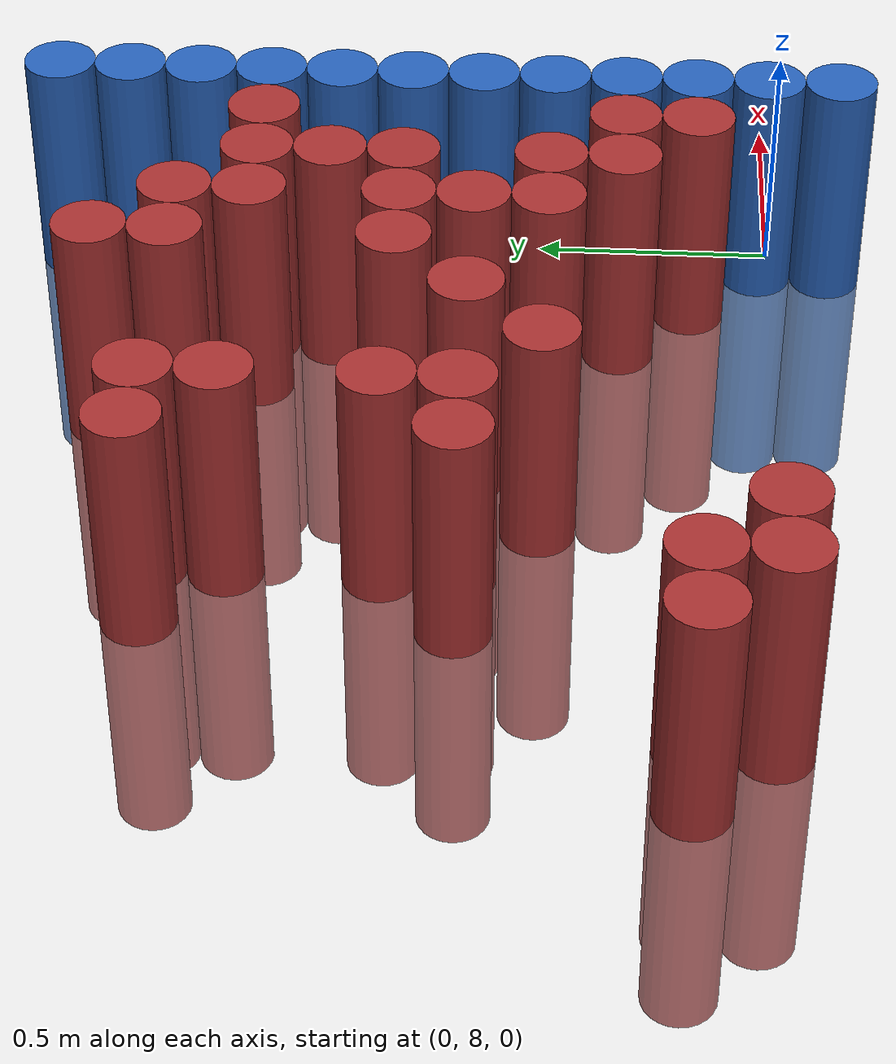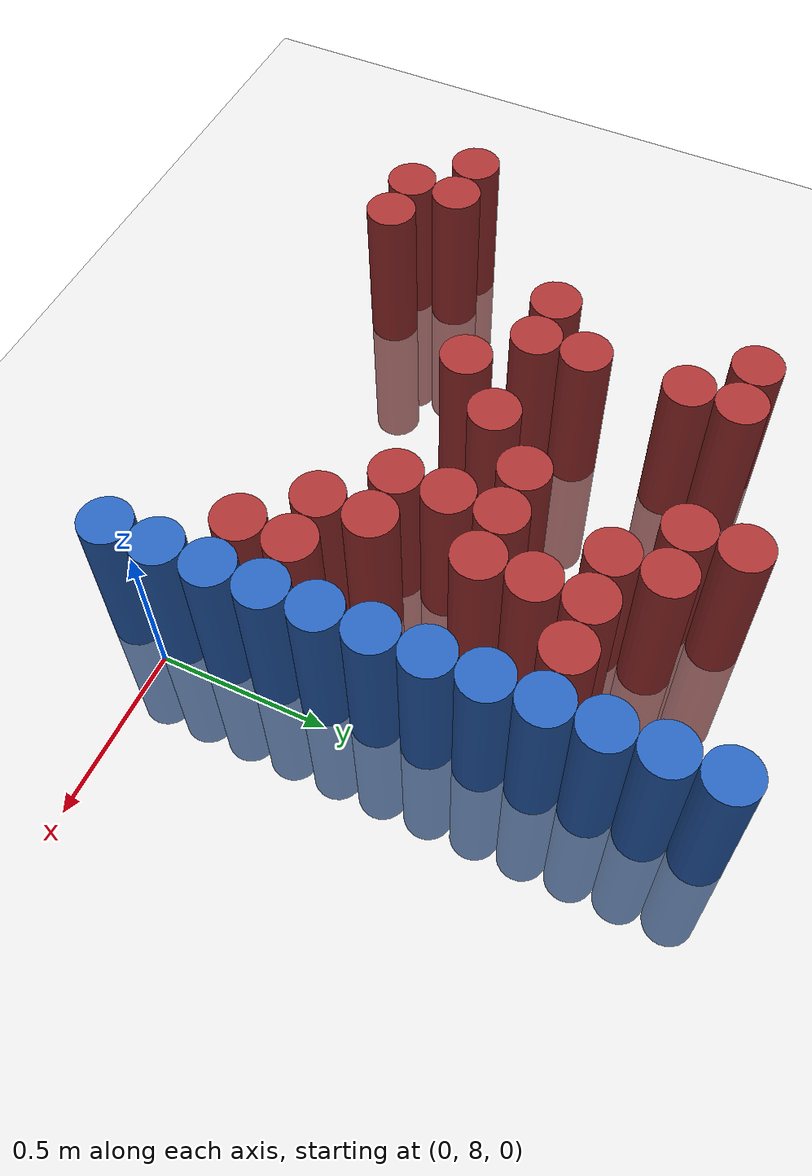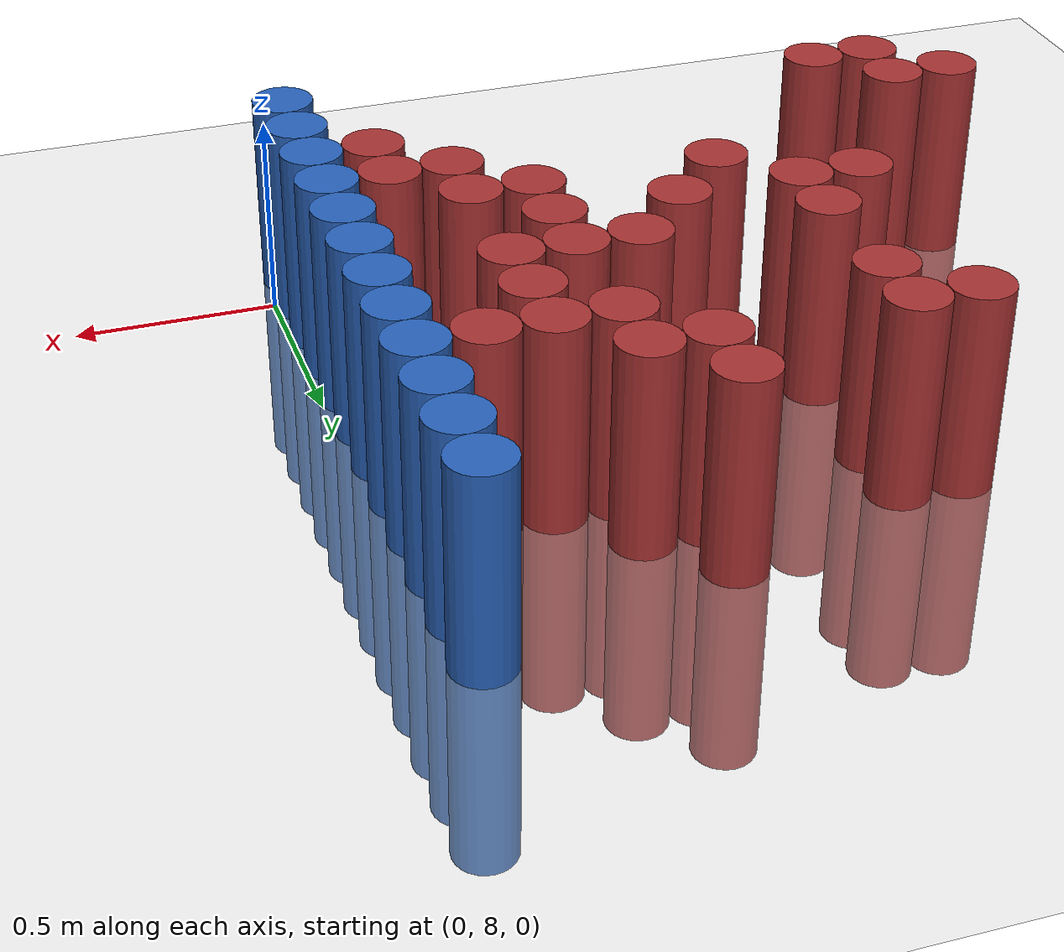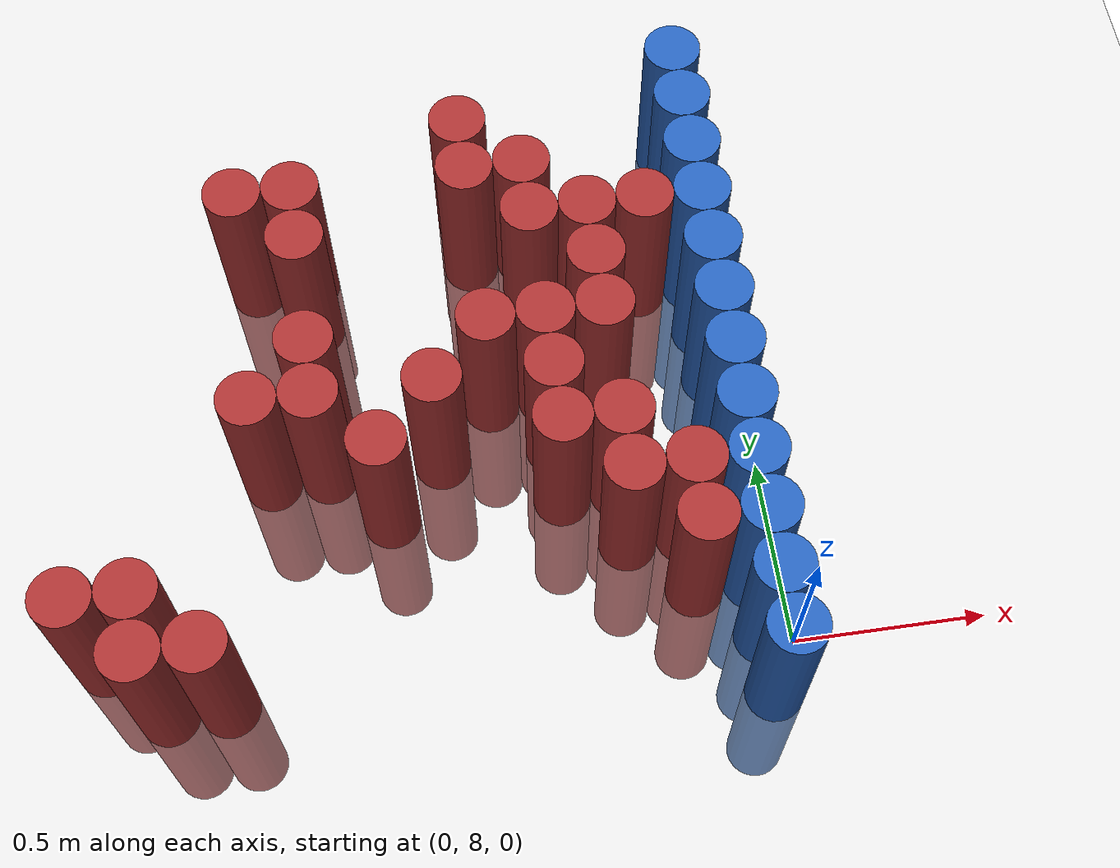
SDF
<sdf version="1.6">
 <world name="default">
  <model name="ground_plane">
   <static>1</static>
   <link name="link">
    <collision name="collision">
     <geometry><plane><normal>0 0 1</normal><size>100 100</size></plane></geometry>
     <surface><friction><ode><mu>100</mu><mu2>50</mu2></ode></friction></surface>
    </collision>
    <visual name="visual">
     <cast_shadows>0</cast_shadows>
     <geometry><plane><normal>0 0 1</normal><size>100 100</size></plane></geometry>
     <material>
      <script><uri>file://media/materials/scripts/gazebo.material</uri><name>Gazebo/Grey</name></script>
     </material>
    </visual>
   </link>
  </model>
  <model name="unit_cylinder_211">
   <static>1</static>
   <pose>-1.725000 8.175000 0.000000 0.000000 0.000000 0.000000</pose>
   <link name="link">
    <inertial>
     <mass>1</mass>
     <inertia><ixx>0.145833</ixx><ixy>0</ixy><ixz>0</ixz><iyy>0.145833</iyy><iyz>0</iyz><izz>0.125</izz></inertia>
    </inertial>
    <collision name="collision">
     <geometry><cylinder><radius>0.075000</radius><length>1</length></cylinder></geometry>
    </collision>
    <visual name="visual">
     <geometry><cylinder><radius>0.075000</radius><length>1</length></cylinder></geometry>
     <material>
      <ambient>0.648000 0.192000 0.192000 1</ambient>
      <diffuse>0.648000 0.192000 0.192000 1</diffuse>
     </material>
     <material>
      <script><name>Gazebo/Grey</name><uri>file://media/materials/scripts/gazebo.material</uri></script>
     </material>
    </visual>
    <sensor name="sensor_contact" type="contact"><contact><collision>collision</collision></contact></sensor>
   </link>
   <plugin filename="gz-sim-touchplugin-system" name="gz::sim::systems::TouchPlugin">
    <target>robot</target>
    <namespace>robot</namespace>
    <time>0.001</time>
    <enabled>true</enabled>
   </plugin>
  </model>
  <model name="unit_cylinder_219">
   <static>1</static>
   <pose>-1.575000 8.025000 0.000000 0.000000 0.000000 0.000000</pose>
   <link name="link">
    <inertial>
     <mass>1</mass>
     <inertia><ixx>0.145833</ixx><ixy>0</ixy><ixz>0</ixz><iyy>0.145833</iyy><iyz>0</iyz><izz>0.125</izz></inertia>
    </inertial>
    <collision name="collision">
     <geometry><cylinder><radius>0.075000</radius><length>1</length></cylinder></geometry>
    </collision>
    <visual name="visual">
     <geometry><cylinder><radius>0.075000</radius><length>1</length></cylinder></geometry>
     <material>
      <ambient>0.648000 0.192000 0.192000 1</ambient>
      <diffuse>0.648000 0.192000 0.192000 1</diffuse>
     </material>
     <material>
      <script><name>Gazebo/Grey</name><uri>file://media/materials/scripts/gazebo.material</uri></script>
     </material>
    </visual>
    <sensor name="sensor_contact" type="contact"><contact><collision>collision</collision></contact></sensor>
   </link>
   <plugin filename="gz-sim-touchplugin-system" name="gz::sim::systems::TouchPlugin">
    <target>robot</target>
    <namespace>robot</namespace>
    <time>0.001</time>
    <enabled>true</enabled>
   </plugin>
  </model>
  <model name="unit_cylinder_220">
   <static>1</static>
   <pose>-1.575000 8.175000 0.000000 0.000000 0.000000 0.000000</pose>
   <link name="link">
    <inertial>
     <mass>1</mass>
     <inertia><ixx>0.145833</ixx><ixy>0</ixy><ixz>0</ixz><iyy>0.145833</iyy><iyz>0</iyz><izz>0.125</izz></inertia>
    </inertial>
    <collision name="collision">
     <geometry><cylinder><radius>0.075000</radius><length>1</length></cylinder></geometry>
    </collision>
    <visual name="visual">
     <geometry><cylinder><radius>0.075000</radius><length>1</length></cylinder></geometry>
     <material>
      <ambient>0.648000 0.192000 0.192000 1</ambient>
      <diffuse>0.648000 0.192000 0.192000 1</diffuse>
     </material>
     <material>
      <script><name>Gazebo/Grey</name><uri>file://media/materials/scripts/gazebo.material</uri></script>
     </material>
    </visual>
    <sensor name="sensor_contact" type="contact"><contact><collision>collision</collision></contact></sensor>
   </link>
   <plugin filename="gz-sim-touchplugin-system" name="gz::sim::systems::TouchPlugin">
    <target>robot</target>
    <namespace>robot</namespace>
    <time>0.001</time>
    <enabled>true</enabled>
   </plugin>
  </model>
  <model name="unit_cylinder_226">
   <static>1</static>
   <pose>-1.425000 8.025000 0.000000 0.000000 0.000000 0.000000</pose>
   <link name="link">
    <inertial>
     <mass>1</mass>
     <inertia><ixx>0.145833</ixx><ixy>0</ixy><ixz>0</ixz><iyy>0.145833</iyy><iyz>0</iyz><izz>0.125</izz></inertia>
    </inertial>
    <collision name="collision">
     <geometry><cylinder><radius>0.075000</radius><length>1</length></cylinder></geometry>
    </collision>
    <visual name="visual">
     <geometry><cylinder><radius>0.075000</radius><length>1</length></cylinder></geometry>
     <material>
      <ambient>0.648000 0.192000 0.192000 1</ambient>
      <diffuse>0.648000 0.192000 0.192000 1</diffuse>
     </material>
     <material>
      <script><name>Gazebo/Grey</name><uri>file://media/materials/scripts/gazebo.material</uri></script>
     </material>
    </visual>
    <sensor name="sensor_contact" type="contact"><contact><collision>collision</collision></contact></sensor>
   </link>
   <plugin filename="gz-sim-touchplugin-system" name="gz::sim::systems::TouchPlugin">
    <target>robot</target>
    <namespace>robot</namespace>
    <time>0.001</time>
    <enabled>true</enabled>
   </plugin>
  </model>
  <model name="unit_cylinder_231">
   <static>1</static>
   <pose>-1.275000 8.625000 0.000000 0.000000 0.000000 0.000000</pose>
   <link name="link">
    <inertial>
     <mass>1</mass>
     <inertia><ixx>0.145833</ixx><ixy>0</ixy><ixz>0</ixz><iyy>0.145833</iyy><iyz>0</iyz><izz>0.125</izz></inertia>
    </inertial>
    <collision name="collision">
     <geometry><cylinder><radius>0.075000</radius><length>1</length></cylinder></geometry>
    </collision>
    <visual name="visual">
     <geometry><cylinder><radius>0.075000</radius><length>1</length></cylinder></geometry>
     <material>
      <ambient>0.648000 0.192000 0.192000 1</ambient>
      <diffuse>0.648000 0.192000 0.192000 1</diffuse>
     </material>
     <material>
      <script><name>Gazebo/Grey</name><uri>file://media/materials/scripts/gazebo.material</uri></script>
     </material>
    </visual>
    <sensor name="sensor_contact" type="contact"><contact><collision>collision</collision></contact></sensor>
   </link>
   <plugin filename="gz-sim-touchplugin-system" name="gz::sim::systems::TouchPlugin">
    <target>robot</target>
    <namespace>robot</namespace>
    <time>0.001</time>
    <enabled>true</enabled>
   </plugin>
  </model>
  <model name="unit_cylinder_232">
   <static>1</static>
   <pose>-1.275000 9.225000 0.000000 0.000000 0.000000 0.000000</pose>
   <link name="link">
    <inertial>
     <mass>1</mass>
     <inertia><ixx>0.145833</ixx><ixy>0</ixy><ixz>0</ixz><iyy>0.145833</iyy><iyz>0</iyz><izz>0.125</izz></inertia>
    </inertial>
    <collision name="collision">
     <geometry><cylinder><radius>0.075000</radius><length>1</length></cylinder></geometry>
    </collision>
    <visual name="visual">
     <geometry><cylinder><radius>0.075000</radius><length>1</length></cylinder></geometry>
     <material>
      <ambient>0.648000 0.192000 0.192000 1</ambient>
      <diffuse>0.648000 0.192000 0.192000 1</diffuse>
     </material>
     <material>
      <script><name>Gazebo/Grey</name><uri>file://media/materials/scripts/gazebo.material</uri></script>
     </material>
    </visual>
    <sensor name="sensor_contact" type="contact"><contact><collision>collision</collision></contact></sensor>
   </link>
   <plugin filename="gz-sim-touchplugin-system" name="gz::sim::systems::TouchPlugin">
    <target>robot</target>
    <namespace>robot</namespace>
    <time>0.001</time>
    <enabled>true</enabled>
   </plugin>
  </model>
  <model name="unit_cylinder_235">
   <static>1</static>
   <pose>-1.125000 8.625000 0.000000 0.000000 0.000000 0.000000</pose>
   <link name="link">
    <inertial>
     <mass>1</mass>
     <inertia><ixx>0.145833</ixx><ixy>0</ixy><ixz>0</ixz><iyy>0.145833</iyy><iyz>0</iyz><izz>0.125</izz></inertia>
    </inertial>
    <collision name="collision">
     <geometry><cylinder><radius>0.075000</radius><length>1</length></cylinder></geometry>
    </collision>
    <visual name="visual">
     <geometry><cylinder><radius>0.075000</radius><length>1</length></cylinder></geometry>
     <material>
      <ambient>0.648000 0.192000 0.192000 1</ambient>
      <diffuse>0.648000 0.192000 0.192000 1</diffuse>
     </material>
     <material>
      <script><name>Gazebo/Grey</name><uri>file://media/materials/scripts/gazebo.material</uri></script>
     </material>
    </visual>
    <sensor name="sensor_contact" type="contact"><contact><collision>collision</collision></contact></sensor>
   </link>
   <plugin filename="gz-sim-touchplugin-system" name="gz::sim::systems::TouchPlugin">
    <target>robot</target>
    <namespace>robot</namespace>
    <time>0.001</time>
    <enabled>true</enabled>
   </plugin>
  </model>
  <model name="unit_cylinder_236">
   <static>1</static>
   <pose>-1.125000 8.775000 0.000000 0.000000 0.000000 0.000000</pose>
   <link name="link">
    <inertial>
     <mass>1</mass>
     <inertia><ixx>0.145833</ixx><ixy>0</ixy><ixz>0</ixz><iyy>0.145833</iyy><iyz>0</iyz><izz>0.125</izz></inertia>
    </inertial>
    <collision name="collision">
     <geometry><cylinder><radius>0.075000</radius><length>1</length></cylinder></geometry>
    </collision>
    <visual name="visual">
     <geometry><cylinder><radius>0.075000</radius><length>1</length></cylinder></geometry>
     <material>
      <ambient>0.648000 0.192000 0.192000 1</ambient>
      <diffuse>0.648000 0.192000 0.192000 1</diffuse>
     </material>
     <material>
      <script><name>Gazebo/Grey</name><uri>file://media/materials/scripts/gazebo.material</uri></script>
     </material>
    </visual>
    <sensor name="sensor_contact" type="contact"><contact><collision>collision</collision></contact></sensor>
   </link>
   <plugin filename="gz-sim-touchplugin-system" name="gz::sim::systems::TouchPlugin">
    <target>robot</target>
    <namespace>robot</namespace>
    <time>0.001</time>
    <enabled>true</enabled>
   </plugin>
  </model>
  <model name="unit_cylinder_237">
   <static>1</static>
   <pose>-1.125000 9.075000 0.000000 0.000000 0.000000 0.000000</pose>
   <link name="link">
    <inertial>
     <mass>1</mass>
     <inertia><ixx>0.145833</ixx><ixy>0</ixy><ixz>0</ixz><iyy>0.145833</iyy><iyz>0</iyz><izz>0.125</izz></inertia>
    </inertial>
    <collision name="collision">
     <geometry><cylinder><radius>0.075000</radius><length>1</length></cylinder></geometry>
    </collision>
    <visual name="visual">
     <geometry><cylinder><radius>0.075000</radius><length>1</length></cylinder></geometry>
     <material>
      <ambient>0.648000 0.192000 0.192000 1</ambient>
      <diffuse>0.648000 0.192000 0.192000 1</diffuse>
     </material>
     <material>
      <script><name>Gazebo/Grey</name><uri>file://media/materials/scripts/gazebo.material</uri></script>
     </material>
    </visual>
    <sensor name="sensor_contact" type="contact"><contact><collision>collision</collision></contact></sensor>
   </link>
   <plugin filename="gz-sim-touchplugin-system" name="gz::sim::systems::TouchPlugin">
    <target>robot</target>
    <namespace>robot</namespace>
    <time>0.001</time>
    <enabled>true</enabled>
   </plugin>
  </model>
  <model name="unit_cylinder_238">
   <static>1</static>
   <pose>-1.125000 9.225000 0.000000 0.000000 0.000000 0.000000</pose>
   <link name="link">
    <inertial>
     <mass>1</mass>
     <inertia><ixx>0.145833</ixx><ixy>0</ixy><ixz>0</ixz><iyy>0.145833</iyy><iyz>0</iyz><izz>0.125</izz></inertia>
    </inertial>
    <collision name="collision">
     <geometry><cylinder><radius>0.075000</radius><length>1</length></cylinder></geometry>
    </collision>
    <visual name="visual">
     <geometry><cylinder><radius>0.075000</radius><length>1</length></cylinder></geometry>
     <material>
      <ambient>0.648000 0.192000 0.192000 1</ambient>
      <diffuse>0.648000 0.192000 0.192000 1</diffuse>
     </material>
     <material>
      <script><name>Gazebo/Grey</name><uri>file://media/materials/scripts/gazebo.material</uri></script>
     </material>
    </visual>
    <sensor name="sensor_contact" type="contact"><contact><collision>collision</collision></contact></sensor>
   </link>
   <plugin filename="gz-sim-touchplugin-system" name="gz::sim::systems::TouchPlugin">
    <target>robot</target>
    <namespace>robot</namespace>
    <time>0.001</time>
    <enabled>true</enabled>
   </plugin>
  </model>
  <model name="unit_cylinder_241">
   <static>1</static>
   <pose>-0.975000 8.475000 0.000000 0.000000 0.000000 0.000000</pose>
   <link name="link">
    <inertial>
     <mass>1</mass>
     <inertia><ixx>0.145833</ixx><ixy>0</ixy><ixz>0</ixz><iyy>0.145833</iyy><iyz>0</iyz><izz>0.125</izz></inertia>
    </inertial>
    <collision name="collision">
     <geometry><cylinder><radius>0.075000</radius><length>1</length></cylinder></geometry>
    </collision>
    <visual name="visual">
     <geometry><cylinder><radius>0.075000</radius><length>1</length></cylinder></geometry>
     <material>
      <ambient>0.648000 0.192000 0.192000 1</ambient>
      <diffuse>0.648000 0.192000 0.192000 1</diffuse>
     </material>
     <material>
      <script><name>Gazebo/Grey</name><uri>file://media/materials/scripts/gazebo.material</uri></script>
     </material>
    </visual>
    <sensor name="sensor_contact" type="contact"><contact><collision>collision</collision></contact></sensor>
   </link>
   <plugin filename="gz-sim-touchplugin-system" name="gz::sim::systems::TouchPlugin">
    <target>robot</target>
    <namespace>robot</namespace>
    <time>0.001</time>
    <enabled>true</enabled>
   </plugin>
  </model>
  <model name="unit_cylinder_245">
   <static>1</static>
   <pose>-0.825000 8.625000 0.000000 0.000000 0.000000 0.000000</pose>
   <link name="link">
    <inertial>
     <mass>1</mass>
     <inertia><ixx>0.145833</ixx><ixy>0</ixy><ixz>0</ixz><iyy>0.145833</iyy><iyz>0</iyz><izz>0.125</izz></inertia>
    </inertial>
    <collision name="collision">
     <geometry><cylinder><radius>0.075000</radius><length>1</length></cylinder></geometry>
    </collision>
    <visual name="visual">
     <geometry><cylinder><radius>0.075000</radius><length>1</length></cylinder></geometry>
     <material>
      <ambient>0.648000 0.192000 0.192000 1</ambient>
      <diffuse>0.648000 0.192000 0.192000 1</diffuse>
     </material>
     <material>
      <script><name>Gazebo/Grey</name><uri>file://media/materials/scripts/gazebo.material</uri></script>
     </material>
    </visual>
    <sensor name="sensor_contact" type="contact"><contact><collision>collision</collision></contact></sensor>
   </link>
   <plugin filename="gz-sim-touchplugin-system" name="gz::sim::systems::TouchPlugin">
    <target>robot</target>
    <namespace>robot</namespace>
    <time>0.001</time>
    <enabled>true</enabled>
   </plugin>
  </model>
  <model name="unit_cylinder_253">
   <static>1</static>
   <pose>-0.675000 8.775000 0.000000 0.000000 0.000000 0.000000</pose>
   <link name="link">
    <inertial>
     <mass>1</mass>
     <inertia><ixx>0.145833</ixx><ixy>0</ixy><ixz>0</ixz><iyy>0.145833</iyy><iyz>0</iyz><izz>0.125</izz></inertia>
    </inertial>
    <collision name="collision">
     <geometry><cylinder><radius>0.075000</radius><length>1</length></cylinder></geometry>
    </collision>
    <visual name="visual">
     <geometry><cylinder><radius>0.075000</radius><length>1</length></cylinder></geometry>
     <material>
      <ambient>0.648000 0.192000 0.192000 1</ambient>
      <diffuse>0.648000 0.192000 0.192000 1</diffuse>
     </material>
     <material>
      <script><name>Gazebo/Grey</name><uri>file://media/materials/scripts/gazebo.material</uri></script>
     </material>
    </visual>
    <sensor name="sensor_contact" type="contact"><contact><collision>collision</collision></contact></sensor>
   </link>
   <plugin filename="gz-sim-touchplugin-system" name="gz::sim::systems::TouchPlugin">
    <target>robot</target>
    <namespace>robot</namespace>
    <time>0.001</time>
    <enabled>true</enabled>
   </plugin>
  </model>
  <model name="unit_cylinder_254">
   <static>1</static>
   <pose>-0.675000 9.225000 0.000000 0.000000 0.000000 0.000000</pose>
   <link name="link">
    <inertial>
     <mass>1</mass>
     <inertia><ixx>0.145833</ixx><ixy>0</ixy><ixz>0</ixz><iyy>0.145833</iyy><iyz>0</iyz><izz>0.125</izz></inertia>
    </inertial>
    <collision name="collision">
     <geometry><cylinder><radius>0.075000</radius><length>1</length></cylinder></geometry>
    </collision>
    <visual name="visual">
     <geometry><cylinder><radius>0.075000</radius><length>1</length></cylinder></geometry>
     <material>
      <ambient>0.648000 0.192000 0.192000 1</ambient>
      <diffuse>0.648000 0.192000 0.192000 1</diffuse>
     </material>
     <material>
      <script><name>Gazebo/Grey</name><uri>file://media/materials/scripts/gazebo.material</uri></script>
     </material>
    </visual>
    <sensor name="sensor_contact" type="contact"><contact><collision>collision</collision></contact></sensor>
   </link>
   <plugin filename="gz-sim-touchplugin-system" name="gz::sim::systems::TouchPlugin">
    <target>robot</target>
    <namespace>robot</namespace>
    <time>0.001</time>
    <enabled>true</enabled>
   </plugin>
  </model>
  <model name="unit_cylinder_255">
   <static>1</static>
   <pose>-0.675000 9.375000 0.000000 0.000000 0.000000 0.000000</pose>
   <link name="link">
    <inertial>
     <mass>1</mass>
     <inertia><ixx>0.145833</ixx><ixy>0</ixy><ixz>0</ixz><iyy>0.145833</iyy><iyz>0</iyz><izz>0.125</izz></inertia>
    </inertial>
    <collision name="collision">
     <geometry><cylinder><radius>0.075000</radius><length>1</length></cylinder></geometry>
    </collision>
    <visual name="visual">
     <geometry><cylinder><radius>0.075000</radius><length>1</length></cylinder></geometry>
     <material>
      <ambient>0.648000 0.192000 0.192000 1</ambient>
      <diffuse>0.648000 0.192000 0.192000 1</diffuse>
     </material>
     <material>
      <script><name>Gazebo/Grey</name><uri>file://media/materials/scripts/gazebo.material</uri></script>
     </material>
    </visual>
    <sensor name="sensor_contact" type="contact"><contact><collision>collision</collision></contact></sensor>
   </link>
   <plugin filename="gz-sim-touchplugin-system" name="gz::sim::systems::TouchPlugin">
    <target>robot</target>
    <namespace>robot</namespace>
    <time>0.001</time>
    <enabled>true</enabled>
   </plugin>
  </model>
  <model name="unit_cylinder_262">
   <static>1</static>
   <pose>-0.525000 8.475000 0.000000 0.000000 0.000000 0.000000</pose>
   <link name="link">
    <inertial>
     <mass>1</mass>
     <inertia><ixx>0.145833</ixx><ixy>0</ixy><ixz>0</ixz><iyy>0.145833</iyy><iyz>0</iyz><izz>0.125</izz></inertia>
    </inertial>
    <collision name="collision">
     <geometry><cylinder><radius>0.075000</radius><length>1</length></cylinder></geometry>
    </collision>
    <visual name="visual">
     <geometry><cylinder><radius>0.075000</radius><length>1</length></cylinder></geometry>
     <material>
      <ambient>0.648000 0.192000 0.192000 1</ambient>
      <diffuse>0.648000 0.192000 0.192000 1</diffuse>
     </material>
     <material>
      <script><name>Gazebo/Grey</name><uri>file://media/materials/scripts/gazebo.material</uri></script>
     </material>
    </visual>
    <sensor name="sensor_contact" type="contact"><contact><collision>collision</collision></contact></sensor>
   </link>
   <plugin filename="gz-sim-touchplugin-system" name="gz::sim::systems::TouchPlugin">
    <target>robot</target>
    <namespace>robot</namespace>
    <time>0.001</time>
    <enabled>true</enabled>
   </plugin>
  </model>
  <model name="unit_cylinder_263">
   <static>1</static>
   <pose>-0.525000 8.625000 0.000000 0.000000 0.000000 0.000000</pose>
   <link name="link">
    <inertial>
     <mass>1</mass>
     <inertia><ixx>0.145833</ixx><ixy>0</ixy><ixz>0</ixz><iyy>0.145833</iyy><iyz>0</iyz><izz>0.125</izz></inertia>
    </inertial>
    <collision name="collision">
     <geometry><cylinder><radius>0.075000</radius><length>1</length></cylinder></geometry>
    </collision>
    <visual name="visual">
     <geometry><cylinder><radius>0.075000</radius><length>1</length></cylinder></geometry>
     <material>
      <ambient>0.648000 0.192000 0.192000 1</ambient>
      <diffuse>0.648000 0.192000 0.192000 1</diffuse>
     </material>
     <material>
      <script><name>Gazebo/Grey</name><uri>file://media/materials/scripts/gazebo.material</uri></script>
     </material>
    </visual>
    <sensor name="sensor_contact" type="contact"><contact><collision>collision</collision></contact></sensor>
   </link>
   <plugin filename="gz-sim-touchplugin-system" name="gz::sim::systems::TouchPlugin">
    <target>robot</target>
    <namespace>robot</namespace>
    <time>0.001</time>
    <enabled>true</enabled>
   </plugin>
  </model>
  <model name="unit_cylinder_264">
   <static>1</static>
   <pose>-0.525000 8.775000 0.000000 0.000000 0.000000 0.000000</pose>
   <link name="link">
    <inertial>
     <mass>1</mass>
     <inertia><ixx>0.145833</ixx><ixy>0</ixy><ixz>0</ixz><iyy>0.145833</iyy><iyz>0</iyz><izz>0.125</izz></inertia>
    </inertial>
    <collision name="collision">
     <geometry><cylinder><radius>0.075000</radius><length>1</length></cylinder></geometry>
    </collision>
    <visual name="visual">
     <geometry><cylinder><radius>0.075000</radius><length>1</length></cylinder></geometry>
     <material>
      <ambient>0.648000 0.192000 0.192000 1</ambient>
      <diffuse>0.648000 0.192000 0.192000 1</diffuse>
     </material>
     <material>
      <script><name>Gazebo/Grey</name><uri>file://media/materials/scripts/gazebo.material</uri></script>
     </material>
    </visual>
    <sensor name="sensor_contact" type="contact"><contact><collision>collision</collision></contact></sensor>
   </link>
   <plugin filename="gz-sim-touchplugin-system" name="gz::sim::systems::TouchPlugin">
    <target>robot</target>
    <namespace>robot</namespace>
    <time>0.001</time>
    <enabled>true</enabled>
   </plugin>
  </model>
  <model name="unit_cylinder_265">
   <static>1</static>
   <pose>-0.525000 9.075000 0.000000 0.000000 0.000000 0.000000</pose>
   <link name="link">
    <inertial>
     <mass>1</mass>
     <inertia><ixx>0.145833</ixx><ixy>0</ixy><ixz>0</ixz><iyy>0.145833</iyy><iyz>0</iyz><izz>0.125</izz></inertia>
    </inertial>
    <collision name="collision">
     <geometry><cylinder><radius>0.075000</radius><length>1</length></cylinder></geometry>
    </collision>
    <visual name="visual">
     <geometry><cylinder><radius>0.075000</radius><length>1</length></cylinder></geometry>
     <material>
      <ambient>0.648000 0.192000 0.192000 1</ambient>
      <diffuse>0.648000 0.192000 0.192000 1</diffuse>
     </material>
     <material>
      <script><name>Gazebo/Grey</name><uri>file://media/materials/scripts/gazebo.material</uri></script>
     </material>
    </visual>
    <sensor name="sensor_contact" type="contact"><contact><collision>collision</collision></contact></sensor>
   </link>
   <plugin filename="gz-sim-touchplugin-system" name="gz::sim::systems::TouchPlugin">
    <target>robot</target>
    <namespace>robot</namespace>
    <time>0.001</time>
    <enabled>true</enabled>
   </plugin>
  </model>
  <model name="unit_cylinder_266">
   <static>1</static>
   <pose>-0.525000 9.225000 0.000000 0.000000 0.000000 0.000000</pose>
   <link name="link">
    <inertial>
     <mass>1</mass>
     <inertia><ixx>0.145833</ixx><ixy>0</ixy><ixz>0</ixz><iyy>0.145833</iyy><iyz>0</iyz><izz>0.125</izz></inertia>
    </inertial>
    <collision name="collision">
     <geometry><cylinder><radius>0.075000</radius><length>1</length></cylinder></geometry>
    </collision>
    <visual name="visual">
     <geometry><cylinder><radius>0.075000</radius><length>1</length></cylinder></geometry>
     <material>
      <ambient>0.648000 0.192000 0.192000 1</ambient>
      <diffuse>0.648000 0.192000 0.192000 1</diffuse>
     </material>
     <material>
      <script><name>Gazebo/Grey</name><uri>file://media/materials/scripts/gazebo.material</uri></script>
     </material>
    </visual>
    <sensor name="sensor_contact" type="contact"><contact><collision>collision</collision></contact></sensor>
   </link>
   <plugin filename="gz-sim-touchplugin-system" name="gz::sim::systems::TouchPlugin">
    <target>robot</target>
    <namespace>robot</namespace>
    <time>0.001</time>
    <enabled>true</enabled>
   </plugin>
  </model>
  <model name="unit_cylinder_270">
   <static>1</static>
   <pose>-0.375000 8.325000 0.000000 0.000000 0.000000 0.000000</pose>
   <link name="link">
    <inertial>
     <mass>1</mass>
     <inertia><ixx>0.145833</ixx><ixy>0</ixy><ixz>0</ixz><iyy>0.145833</iyy><iyz>0</iyz><izz>0.125</izz></inertia>
    </inertial>
    <collision name="collision">
     <geometry><cylinder><radius>0.075000</radius><length>1</length></cylinder></geometry>
    </collision>
    <visual name="visual">
     <geometry><cylinder><radius>0.075000</radius><length>1</length></cylinder></geometry>
     <material>
      <ambient>0.648000 0.192000 0.192000 1</ambient>
      <diffuse>0.648000 0.192000 0.192000 1</diffuse>
     </material>
     <material>
      <script><name>Gazebo/Grey</name><uri>file://media/materials/scripts/gazebo.material</uri></script>
     </material>
    </visual>
    <sensor name="sensor_contact" type="contact"><contact><collision>collision</collision></contact></sensor>
   </link>
   <plugin filename="gz-sim-touchplugin-system" name="gz::sim::systems::TouchPlugin">
    <target>robot</target>
    <namespace>robot</namespace>
    <time>0.001</time>
    <enabled>true</enabled>
   </plugin>
  </model>
  <model name="unit_cylinder_271">
   <static>1</static>
   <pose>-0.375000 8.475000 0.000000 0.000000 0.000000 0.000000</pose>
   <link name="link">
    <inertial>
     <mass>1</mass>
     <inertia><ixx>0.145833</ixx><ixy>0</ixy><ixz>0</ixz><iyy>0.145833</iyy><iyz>0</iyz><izz>0.125</izz></inertia>
    </inertial>
    <collision name="collision">
     <geometry><cylinder><radius>0.075000</radius><length>1</length></cylinder></geometry>
    </collision>
    <visual name="visual">
     <geometry><cylinder><radius>0.075000</radius><length>1</length></cylinder></geometry>
     <material>
      <ambient>0.648000 0.192000 0.192000 1</ambient>
      <diffuse>0.648000 0.192000 0.192000 1</diffuse>
     </material>
     <material>
      <script><name>Gazebo/Grey</name><uri>file://media/materials/scripts/gazebo.material</uri></script>
     </material>
    </visual>
    <sensor name="sensor_contact" type="contact"><contact><collision>collision</collision></contact></sensor>
   </link>
   <plugin filename="gz-sim-touchplugin-system" name="gz::sim::systems::TouchPlugin">
    <target>robot</target>
    <namespace>robot</namespace>
    <time>0.001</time>
    <enabled>true</enabled>
   </plugin>
  </model>
  <model name="unit_cylinder_272">
   <static>1</static>
   <pose>-0.375000 8.775000 0.000000 0.000000 0.000000 0.000000</pose>
   <link name="link">
    <inertial>
     <mass>1</mass>
     <inertia><ixx>0.145833</ixx><ixy>0</ixy><ixz>0</ixz><iyy>0.145833</iyy><iyz>0</iyz><izz>0.125</izz></inertia>
    </inertial>
    <collision name="collision">
     <geometry><cylinder><radius>0.075000</radius><length>1</length></cylinder></geometry>
    </collision>
    <visual name="visual">
     <geometry><cylinder><radius>0.075000</radius><length>1</length></cylinder></geometry>
     <material>
      <ambient>0.648000 0.192000 0.192000 1</ambient>
      <diffuse>0.648000 0.192000 0.192000 1</diffuse>
     </material>
     <material>
      <script><name>Gazebo/Grey</name><uri>file://media/materials/scripts/gazebo.material</uri></script>
     </material>
    </visual>
    <sensor name="sensor_contact" type="contact"><contact><collision>collision</collision></contact></sensor>
   </link>
   <plugin filename="gz-sim-touchplugin-system" name="gz::sim::systems::TouchPlugin">
    <target>robot</target>
    <namespace>robot</namespace>
    <time>0.001</time>
    <enabled>true</enabled>
   </plugin>
  </model>
  <model name="unit_cylinder_273">
   <static>1</static>
   <pose>-0.375000 8.925000 0.000000 0.000000 0.000000 0.000000</pose>
   <link name="link">
    <inertial>
     <mass>1</mass>
     <inertia><ixx>0.145833</ixx><ixy>0</ixy><ixz>0</ixz><iyy>0.145833</iyy><iyz>0</iyz><izz>0.125</izz></inertia>
    </inertial>
    <collision name="collision">
     <geometry><cylinder><radius>0.075000</radius><length>1</length></cylinder></geometry>
    </collision>
    <visual name="visual">
     <geometry><cylinder><radius>0.075000</radius><length>1</length></cylinder></geometry>
     <material>
      <ambient>0.648000 0.192000 0.192000 1</ambient>
      <diffuse>0.648000 0.192000 0.192000 1</diffuse>
     </material>
     <material>
      <script><name>Gazebo/Grey</name><uri>file://media/materials/scripts/gazebo.material</uri></script>
     </material>
    </visual>
    <sensor name="sensor_contact" type="contact"><contact><collision>collision</collision></contact></sensor>
   </link>
   <plugin filename="gz-sim-touchplugin-system" name="gz::sim::systems::TouchPlugin">
    <target>robot</target>
    <namespace>robot</namespace>
    <time>0.001</time>
    <enabled>true</enabled>
   </plugin>
  </model>
  <model name="unit_cylinder_274">
   <static>1</static>
   <pose>-0.375000 9.075000 0.000000 0.000000 0.000000 0.000000</pose>
   <link name="link">
    <inertial>
     <mass>1</mass>
     <inertia><ixx>0.145833</ixx><ixy>0</ixy><ixz>0</ixz><iyy>0.145833</iyy><iyz>0</iyz><izz>0.125</izz></inertia>
    </inertial>
    <collision name="collision">
     <geometry><cylinder><radius>0.075000</radius><length>1</length></cylinder></geometry>
    </collision>
    <visual name="visual">
     <geometry><cylinder><radius>0.075000</radius><length>1</length></cylinder></geometry>
     <material>
      <ambient>0.648000 0.192000 0.192000 1</ambient>
      <diffuse>0.648000 0.192000 0.192000 1</diffuse>
     </material>
     <material>
      <script><name>Gazebo/Grey</name><uri>file://media/materials/scripts/gazebo.material</uri></script>
     </material>
    </visual>
    <sensor name="sensor_contact" type="contact"><contact><collision>collision</collision></contact></sensor>
   </link>
   <plugin filename="gz-sim-touchplugin-system" name="gz::sim::systems::TouchPlugin">
    <target>robot</target>
    <namespace>robot</namespace>
    <time>0.001</time>
    <enabled>true</enabled>
   </plugin>
  </model>
  <model name="unit_cylinder_283">
   <static>1</static>
   <pose>-0.225000 8.175000 0.000000 0.000000 0.000000 0.000000</pose>
   <link name="link">
    <inertial>
     <mass>1</mass>
     <inertia><ixx>0.145833</ixx><ixy>0</ixy><ixz>0</ixz><iyy>0.145833</iyy><iyz>0</iyz><izz>0.125</izz></inertia>
    </inertial>
    <collision name="collision">
     <geometry><cylinder><radius>0.075000</radius><length>1</length></cylinder></geometry>
    </collision>
    <visual name="visual">
     <geometry><cylinder><radius>0.075000</radius><length>1</length></cylinder></geometry>
     <material>
      <ambient>0.648000 0.192000 0.192000 1</ambient>
      <diffuse>0.648000 0.192000 0.192000 1</diffuse>
     </material>
     <material>
      <script><name>Gazebo/Grey</name><uri>file://media/materials/scripts/gazebo.material</uri></script>
     </material>
    </visual>
    <sensor name="sensor_contact" type="contact"><contact><collision>collision</collision></contact></sensor>
   </link>
   <plugin filename="gz-sim-touchplugin-system" name="gz::sim::systems::TouchPlugin">
    <target>robot</target>
    <namespace>robot</namespace>
    <time>0.001</time>
    <enabled>true</enabled>
   </plugin>
  </model>
  <model name="unit_cylinder_284">
   <static>1</static>
   <pose>-0.225000 8.325000 0.000000 0.000000 0.000000 0.000000</pose>
   <link name="link">
    <inertial>
     <mass>1</mass>
     <inertia><ixx>0.145833</ixx><ixy>0</ixy><ixz>0</ixz><iyy>0.145833</iyy><iyz>0</iyz><izz>0.125</izz></inertia>
    </inertial>
    <collision name="collision">
     <geometry><cylinder><radius>0.075000</radius><length>1</length></cylinder></geometry>
    </collision>
    <visual name="visual">
     <geometry><cylinder><radius>0.075000</radius><length>1</length></cylinder></geometry>
     <material>
      <ambient>0.648000 0.192000 0.192000 1</ambient>
      <diffuse>0.648000 0.192000 0.192000 1</diffuse>
     </material>
     <material>
      <script><name>Gazebo/Grey</name><uri>file://media/materials/scripts/gazebo.material</uri></script>
     </material>
    </visual>
    <sensor name="sensor_contact" type="contact"><contact><collision>collision</collision></contact></sensor>
   </link>
   <plugin filename="gz-sim-touchplugin-system" name="gz::sim::systems::TouchPlugin">
    <target>robot</target>
    <namespace>robot</namespace>
    <time>0.001</time>
    <enabled>true</enabled>
   </plugin>
  </model>
  <model name="unit_cylinder_285">
   <static>1</static>
   <pose>-0.225000 9.075000 0.000000 0.000000 0.000000 0.000000</pose>
   <link name="link">
    <inertial>
     <mass>1</mass>
     <inertia><ixx>0.145833</ixx><ixy>0</ixy><ixz>0</ixz><iyy>0.145833</iyy><iyz>0</iyz><izz>0.125</izz></inertia>
    </inertial>
    <collision name="collision">
     <geometry><cylinder><radius>0.075000</radius><length>1</length></cylinder></geometry>
    </collision>
    <visual name="visual">
     <geometry><cylinder><radius>0.075000</radius><length>1</length></cylinder></geometry>
     <material>
      <ambient>0.648000 0.192000 0.192000 1</ambient>
      <diffuse>0.648000 0.192000 0.192000 1</diffuse>
     </material>
     <material>
      <script><name>Gazebo/Grey</name><uri>file://media/materials/scripts/gazebo.material</uri></script>
     </material>
    </visual>
    <sensor name="sensor_contact" type="contact"><contact><collision>collision</collision></contact></sensor>
   </link>
   <plugin filename="gz-sim-touchplugin-system" name="gz::sim::systems::TouchPlugin">
    <target>robot</target>
    <namespace>robot</namespace>
    <time>0.001</time>
    <enabled>true</enabled>
   </plugin>
  </model>
  <model name="unit_cylinder_304">
   <static>1</static>
   <pose>-0.075000 7.875000 0.000000 0.000000 0.000000 0.000000</pose>
   <link name="link">
    <inertial>
     <mass>1</mass>
     <inertia><ixx>0.145833</ixx><ixy>0</ixy><ixz>0</ixz><iyy>0.145833</iyy><iyz>0</iyz><izz>0.125</izz></inertia>
    </inertial>
    <collision name="collision">
     <geometry><cylinder><radius>0.075000</radius><length>1</length></cylinder></geometry>
    </collision>
    <visual name="visual">
     <geometry><cylinder><radius>0.075000</radius><length>1</length></cylinder></geometry>
     <material>
      <ambient>0.152000 0.379000 0.720000 1</ambient>
      <diffuse>0.152000 0.379000 0.720000 1</diffuse>
     </material>
     <material>
      <script><name>Gazebo/Grey</name><uri>file://media/materials/scripts/gazebo.material</uri></script>
     </material>
    </visual>
    <sensor name="sensor_contact" type="contact"><contact><collision>collision</collision></contact></sensor>
   </link>
   <plugin filename="gz-sim-touchplugin-system" name="gz::sim::systems::TouchPlugin">
    <target>robot</target>
    <namespace>robot</namespace>
    <time>0.001</time>
    <enabled>true</enabled>
   </plugin>
  </model>
  <model name="unit_cylinder_305">
   <static>1</static>
   <pose>-0.075000 8.025000 0.000000 0.000000 0.000000 0.000000</pose>
   <link name="link">
    <inertial>
     <mass>1</mass>
     <inertia><ixx>0.145833</ixx><ixy>0</ixy><ixz>0</ixz><iyy>0.145833</iyy><iyz>0</iyz><izz>0.125</izz></inertia>
    </inertial>
    <collision name="collision">
     <geometry><cylinder><radius>0.075000</radius><length>1</length></cylinder></geometry>
    </collision>
    <visual name="visual">
     <geometry><cylinder><radius>0.075000</radius><length>1</length></cylinder></geometry>
     <material>
      <ambient>0.152000 0.379000 0.720000 1</ambient>
      <diffuse>0.152000 0.379000 0.720000 1</diffuse>
     </material>
     <material>
      <script><name>Gazebo/Grey</name><uri>file://media/materials/scripts/gazebo.material</uri></script>
     </material>
    </visual>
    <sensor name="sensor_contact" type="contact"><contact><collision>collision</collision></contact></sensor>
   </link>
   <plugin filename="gz-sim-touchplugin-system" name="gz::sim::systems::TouchPlugin">
    <target>robot</target>
    <namespace>robot</namespace>
    <time>0.001</time>
    <enabled>true</enabled>
   </plugin>
  </model>
  <model name="unit_cylinder_306">
   <static>1</static>
   <pose>-0.075000 8.175000 0.000000 0.000000 0.000000 0.000000</pose>
   <link name="link">
    <inertial>
     <mass>1</mass>
     <inertia><ixx>0.145833</ixx><ixy>0</ixy><ixz>0</ixz><iyy>0.145833</iyy><iyz>0</iyz><izz>0.125</izz></inertia>
    </inertial>
    <collision name="collision">
     <geometry><cylinder><radius>0.075000</radius><length>1</length></cylinder></geometry>
    </collision>
    <visual name="visual">
     <geometry><cylinder><radius>0.075000</radius><length>1</length></cylinder></geometry>
     <material>
      <ambient>0.152000 0.379000 0.720000 1</ambient>
      <diffuse>0.152000 0.379000 0.720000 1</diffuse>
     </material>
     <material>
      <script><name>Gazebo/Grey</name><uri>file://media/materials/scripts/gazebo.material</uri></script>
     </material>
    </visual>
    <sensor name="sensor_contact" type="contact"><contact><collision>collision</collision></contact></sensor>
   </link>
   <plugin filename="gz-sim-touchplugin-system" name="gz::sim::systems::TouchPlugin">
    <target>robot</target>
    <namespace>robot</namespace>
    <time>0.001</time>
    <enabled>true</enabled>
   </plugin>
  </model>
  <model name="unit_cylinder_307">
   <static>1</static>
   <pose>-0.075000 8.325000 0.000000 0.000000 0.000000 0.000000</pose>
   <link name="link">
    <inertial>
     <mass>1</mass>
     <inertia><ixx>0.145833</ixx><ixy>0</ixy><ixz>0</ixz><iyy>0.145833</iyy><iyz>0</iyz><izz>0.125</izz></inertia>
    </inertial>
    <collision name="collision">
     <geometry><cylinder><radius>0.075000</radius><length>1</length></cylinder></geometry>
    </collision>
    <visual name="visual">
     <geometry><cylinder><radius>0.075000</radius><length>1</length></cylinder></geometry>
     <material>
      <ambient>0.152000 0.379000 0.720000 1</ambient>
      <diffuse>0.152000 0.379000 0.720000 1</diffuse>
     </material>
     <material>
      <script><name>Gazebo/Grey</name><uri>file://media/materials/scripts/gazebo.material</uri></script>
     </material>
    </visual>
    <sensor name="sensor_contact" type="contact"><contact><collision>collision</collision></contact></sensor>
   </link>
   <plugin filename="gz-sim-touchplugin-system" name="gz::sim::systems::TouchPlugin">
    <target>robot</target>
    <namespace>robot</namespace>
    <time>0.001</time>
    <enabled>true</enabled>
   </plugin>
  </model>
  <model name="unit_cylinder_308">
   <static>1</static>
   <pose>-0.075000 8.475000 0.000000 0.000000 0.000000 0.000000</pose>
   <link name="link">
    <inertial>
     <mass>1</mass>
     <inertia><ixx>0.145833</ixx><ixy>0</ixy><ixz>0</ixz><iyy>0.145833</iyy><iyz>0</iyz><izz>0.125</izz></inertia>
    </inertial>
    <collision name="collision">
     <geometry><cylinder><radius>0.075000</radius><length>1</length></cylinder></geometry>
    </collision>
    <visual name="visual">
     <geometry><cylinder><radius>0.075000</radius><length>1</length></cylinder></geometry>
     <material>
      <ambient>0.152000 0.379000 0.720000 1</ambient>
      <diffuse>0.152000 0.379000 0.720000 1</diffuse>
     </material>
     <material>
      <script><name>Gazebo/Grey</name><uri>file://media/materials/scripts/gazebo.material</uri></script>
     </material>
    </visual>
    <sensor name="sensor_contact" type="contact"><contact><collision>collision</collision></contact></sensor>
   </link>
   <plugin filename="gz-sim-touchplugin-system" name="gz::sim::systems::TouchPlugin">
    <target>robot</target>
    <namespace>robot</namespace>
    <time>0.001</time>
    <enabled>true</enabled>
   </plugin>
  </model>
  <model name="unit_cylinder_309">
   <static>1</static>
   <pose>-0.075000 8.625000 0.000000 0.000000 0.000000 0.000000</pose>
   <link name="link">
    <inertial>
     <mass>1</mass>
     <inertia><ixx>0.145833</ixx><ixy>0</ixy><ixz>0</ixz><iyy>0.145833</iyy><iyz>0</iyz><izz>0.125</izz></inertia>
    </inertial>
    <collision name="collision">
     <geometry><cylinder><radius>0.075000</radius><length>1</length></cylinder></geometry>
    </collision>
    <visual name="visual">
     <geometry><cylinder><radius>0.075000</radius><length>1</length></cylinder></geometry>
     <material>
      <ambient>0.152000 0.379000 0.720000 1</ambient>
      <diffuse>0.152000 0.379000 0.720000 1</diffuse>
     </material>
     <material>
      <script><name>Gazebo/Grey</name><uri>file://media/materials/scripts/gazebo.material</uri></script>
     </material>
    </visual>
    <sensor name="sensor_contact" type="contact"><contact><collision>collision</collision></contact></sensor>
   </link>
   <plugin filename="gz-sim-touchplugin-system" name="gz::sim::systems::TouchPlugin">
    <target>robot</target>
    <namespace>robot</namespace>
    <time>0.001</time>
    <enabled>true</enabled>
   </plugin>
  </model>
  <model name="unit_cylinder_310">
   <static>1</static>
   <pose>-0.075000 8.775000 0.000000 0.000000 0.000000 0.000000</pose>
   <link name="link">
    <inertial>
     <mass>1</mass>
     <inertia><ixx>0.145833</ixx><ixy>0</ixy><ixz>0</ixz><iyy>0.145833</iyy><iyz>0</iyz><izz>0.125</izz></inertia>
    </inertial>
    <collision name="collision">
     <geometry><cylinder><radius>0.075000</radius><length>1</length></cylinder></geometry>
    </collision>
    <visual name="visual">
     <geometry><cylinder><radius>0.075000</radius><length>1</length></cylinder></geometry>
     <material>
      <ambient>0.152000 0.379000 0.720000 1</ambient>
      <diffuse>0.152000 0.379000 0.720000 1</diffuse>
     </material>
     <material>
      <script><name>Gazebo/Grey</name><uri>file://media/materials/scripts/gazebo.material</uri></script>
     </material>
    </visual>
    <sensor name="sensor_contact" type="contact"><contact><collision>collision</collision></contact></sensor>
   </link>
   <plugin filename="gz-sim-touchplugin-system" name="gz::sim::systems::TouchPlugin">
    <target>robot</target>
    <namespace>robot</namespace>
    <time>0.001</time>
    <enabled>true</enabled>
   </plugin>
  </model>
  <model name="unit_cylinder_311">
   <static>1</static>
   <pose>-0.075000 8.925000 0.000000 0.000000 0.000000 0.000000</pose>
   <link name="link">
    <inertial>
     <mass>1</mass>
     <inertia><ixx>0.145833</ixx><ixy>0</ixy><ixz>0</ixz><iyy>0.145833</iyy><iyz>0</iyz><izz>0.125</izz></inertia>
    </inertial>
    <collision name="collision">
     <geometry><cylinder><radius>0.075000</radius><length>1</length></cylinder></geometry>
    </collision>
    <visual name="visual">
     <geometry><cylinder><radius>0.075000</radius><length>1</length></cylinder></geometry>
     <material>
      <ambient>0.152000 0.379000 0.720000 1</ambient>
      <diffuse>0.152000 0.379000 0.720000 1</diffuse>
     </material>
     <material>
      <script><name>Gazebo/Grey</name><uri>file://media/materials/scripts/gazebo.material</uri></script>
     </material>
    </visual>
    <sensor name="sensor_contact" type="contact"><contact><collision>collision</collision></contact></sensor>
   </link>
   <plugin filename="gz-sim-touchplugin-system" name="gz::sim::systems::TouchPlugin">
    <target>robot</target>
    <namespace>robot</namespace>
    <time>0.001</time>
    <enabled>true</enabled>
   </plugin>
  </model>
  <model name="unit_cylinder_312">
   <static>1</static>
   <pose>-0.075000 9.075000 0.000000 0.000000 0.000000 0.000000</pose>
   <link name="link">
    <inertial>
     <mass>1</mass>
     <inertia><ixx>0.145833</ixx><ixy>0</ixy><ixz>0</ixz><iyy>0.145833</iyy><iyz>0</iyz><izz>0.125</izz></inertia>
    </inertial>
    <collision name="collision">
     <geometry><cylinder><radius>0.075000</radius><length>1</length></cylinder></geometry>
    </collision>
    <visual name="visual">
     <geometry><cylinder><radius>0.075000</radius><length>1</length></cylinder></geometry>
     <material>
      <ambient>0.152000 0.379000 0.720000 1</ambient>
      <diffuse>0.152000 0.379000 0.720000 1</diffuse>
     </material>
     <material>
      <script><name>Gazebo/Grey</name><uri>file://media/materials/scripts/gazebo.material</uri></script>
     </material>
    </visual>
    <sensor name="sensor_contact" type="contact"><contact><collision>collision</collision></contact></sensor>
   </link>
   <plugin filename="gz-sim-touchplugin-system" name="gz::sim::systems::TouchPlugin">
    <target>robot</target>
    <namespace>robot</namespace>
    <time>0.001</time>
    <enabled>true</enabled>
   </plugin>
  </model>
  <model name="unit_cylinder_313">
   <static>1</static>
   <pose>-0.075000 9.225000 0.000000 0.000000 0.000000 0.000000</pose>
   <link name="link">
    <inertial>
     <mass>1</mass>
     <inertia><ixx>0.145833</ixx><ixy>0</ixy><ixz>0</ixz><iyy>0.145833</iyy><iyz>0</iyz><izz>0.125</izz></inertia>
    </inertial>
    <collision name="collision">
     <geometry><cylinder><radius>0.075000</radius><length>1</length></cylinder></geometry>
    </collision>
    <visual name="visual">
     <geometry><cylinder><radius>0.075000</radius><length>1</length></cylinder></geometry>
     <material>
      <ambient>0.152000 0.379000 0.720000 1</ambient>
      <diffuse>0.152000 0.379000 0.720000 1</diffuse>
     </material>
     <material>
      <script><name>Gazebo/Grey</name><uri>file://media/materials/scripts/gazebo.material</uri></script>
     </material>
    </visual>
    <sensor name="sensor_contact" type="contact"><contact><collision>collision</collision></contact></sensor>
   </link>
   <plugin filename="gz-sim-touchplugin-system" name="gz::sim::systems::TouchPlugin">
    <target>robot</target>
    <namespace>robot</namespace>
    <time>0.001</time>
    <enabled>true</enabled>
   </plugin>
  </model>
  <model name="unit_cylinder_314">
   <static>1</static>
   <pose>-0.075000 9.375000 0.000000 0.000000 0.000000 0.000000</pose>
   <link name="link">
    <inertial>
     <mass>1</mass>
     <inertia><ixx>0.145833</ixx><ixy>0</ixy><ixz>0</ixz><iyy>0.145833</iyy><iyz>0</iyz><izz>0.125</izz></inertia>
    </inertial>
    <collision name="collision">
     <geometry><cylinder><radius>0.075000</radius><length>1</length></cylinder></geometry>
    </collision>
    <visual name="visual">
     <geometry><cylinder><radius>0.075000</radius><length>1</length></cylinder></geometry>
     <material>
      <ambient>0.152000 0.379000 0.720000 1</ambient>
      <diffuse>0.152000 0.379000 0.720000 1</diffuse>
     </material>
     <material>
      <script><name>Gazebo/Grey</name><uri>file://media/materials/scripts/gazebo.material</uri></script>
     </material>
    </visual>
    <sensor name="sensor_contact" type="contact"><contact><collision>collision</collision></contact></sensor>
   </link>
   <plugin filename="gz-sim-touchplugin-system" name="gz::sim::systems::TouchPlugin">
    <target>robot</target>
    <namespace>robot</namespace>
    <time>0.001</time>
    <enabled>true</enabled>
   </plugin>
  </model>
  <model name="unit_cylinder_315">
   <static>1</static>
   <pose>-0.075000 9.525000 0.000000 0.000000 0.000000 0.000000</pose>
   <link name="link">
    <inertial>
     <mass>1</mass>
     <inertia><ixx>0.145833</ixx><ixy>0</ixy><ixz>0</ixz><iyy>0.145833</iyy><iyz>0</iyz><izz>0.125</izz></inertia>
    </inertial>
    <collision name="collision">
     <geometry><cylinder><radius>0.075000</radius><length>1</length></cylinder></geometry>
    </collision>
    <visual name="visual">
     <geometry><cylinder><radius>0.075000</radius><length>1</length></cylinder></geometry>
     <material>
      <ambient>0.152000 0.379000 0.720000 1</ambient>
      <diffuse>0.152000 0.379000 0.720000 1</diffuse>
     </material>
     <material>
      <script><name>Gazebo/Grey</name><uri>file://media/materials/scripts/gazebo.material</uri></script>
     </material>
    </visual>
    <sensor name="sensor_contact" type="contact"><contact><collision>collision</collision></contact></sensor>
   </link>
   <plugin filename="gz-sim-touchplugin-system" name="gz::sim::systems::TouchPlugin">
    <target>robot</target>
    <namespace>robot</namespace>
    <time>0.001</time>
    <enabled>true</enabled>
   </plugin>
  </model>
 </world>
</sdf>
